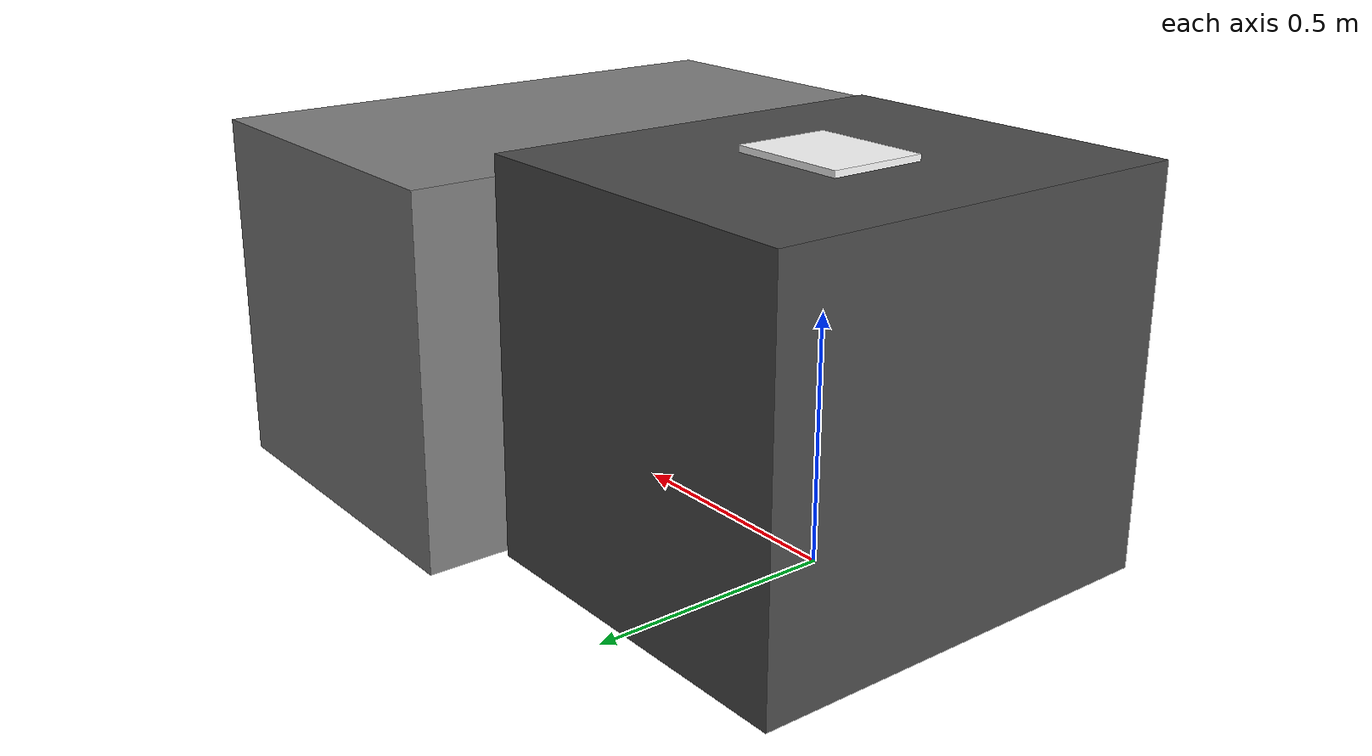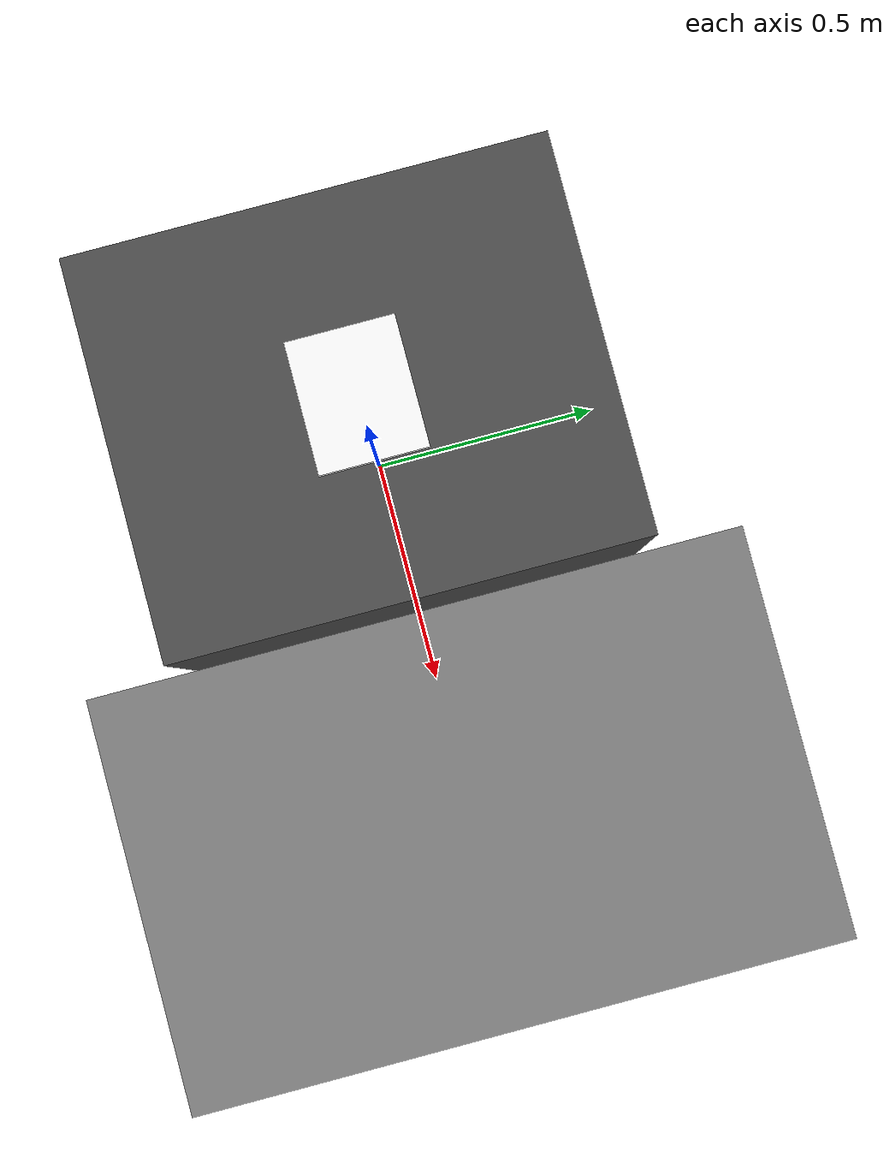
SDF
<?xml version='1.0'?>
<sdf version='1.7'>
    <model name="simplified_replica">
        <link name = "thor_table">
            <mass>80</mass>
            <inertia>
                <ixx>9.15</ixx>
                <ixy>0</ixy>
                <ixz>0</ixz>
                <iyy>9.53</iyy>
                <iyz>0</iyz>
                <izz>7.88</izz>
            </inertia>
            <pose>0 0 0 0 -0 0</pose>
            <visual name="visual">
                <pose>0 0 0.3935 0 0 0</pose>
                <geometry>
                    <box>
                        <size>0.75 0.9 0.787</size>
                    </box>
                </geometry>
                <material>
                    <diffuse>0.3 0.3 0.3 1</diffuse>
                </material>
            </visual>
            <collision name="collision">
                <pose>0 0 0.3935 0 0 0</pose>
                <geometry>
                    <box>
                        <size>0.75 0.9 0.787</size>
                    </box>
                </geometry>
            </collision>
        </link>
        <link name = "wooden_table">
            <mass>80</mass>
            <inertia>
                <ixx>9.15</ixx>
                <ixy>0</ixy>
                <ixz>0</ixz>
                <iyy>9.53</iyy>
                <iyz>0</iyz>
                <izz>7.88</izz>
            </inertia>
            <pose>0 0 0 0 -0 0</pose>
            <visual name="visual">
                <pose>0.775 0 0.37 0 0 0</pose>
                <geometry>
                    <box>
                        <size>0.76 1.215 0.74</size>
                    </box>
                </geometry>
                <material>
                    <diffuse>0.5 0.5 0.5 1</diffuse>
                </material>
            </visual>
            <collision name="collision">
                <pose>0.775 0 0.3 0 0 0</pose>
                <geometry>
                    <box>
                        <size>0.76 1.215 0.74</size>
                    </box>
                </geometry>
            </collision>
        </link>
        <link name = "bracket">
            <mass>1</mass>
            <inertia>
                <ixx>0.003</ixx>
                <ixy>0</ixy>
                <ixz>0.008</ixz>
                <iyy>9.53</iyy>
                <iyz>0</iyz>
                <izz>0.005</izz>
            </inertia>
            <pose>0 0 0 0 -0 0</pose>
            <visual name="visual">
                <pose>0 0 0.7935 0 0 0</pose>
                <geometry>
                    <box>
                        <size>0.245 0.203 0.013</size>
                    </box>
                </geometry>
                <material>
                    <diffuse>1 1 1 1</diffuse>
                </material>
            </visual>
            <collision name="collision">
                <pose>0 0 0.7935 0 0 0</pose>
                <geometry>
                    <box>
                        <size>0.245 0.203 0.013</size>
                    </box>
                </geometry>
            </collision>
        </link>
    </model>
</sdf>
